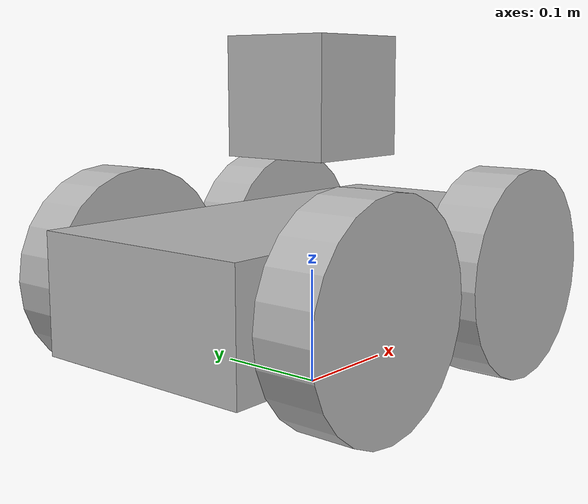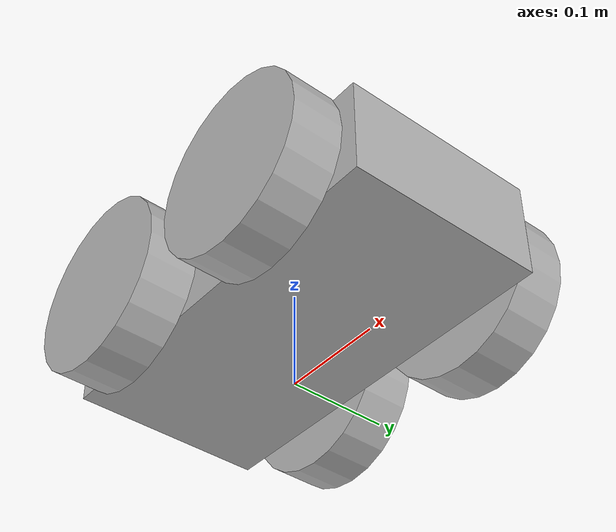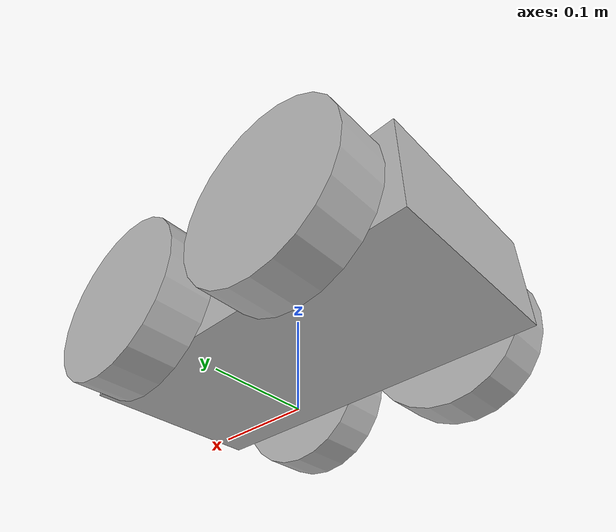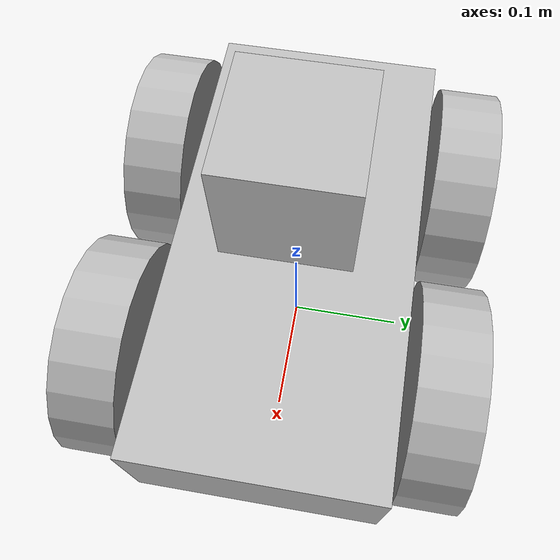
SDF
<?xml version="1.0" ?>
<sdf version="1.4">
	<model name="my_robot">
	<static>false</static>

	<link name="camera">
		<pose>.0 .0 .25 .0 .0 .0</pose>
		<inertial>
        		<mass>0.1</mass>
      		</inertial>
		<collision name="camera_collision">
		        <geometry>
			        <box>
				        <size>0.1 0.1 0.1</size>
			          </box>
		        </geometry>
		</collision>
		<visual name="camera_visual">
		        <geometry>
			          <box>
            				<size>0.1 0.1 0.1</size>
			          </box>
		        </geometry>
		</visual>
		<sensor name="camera" type="camera">
			<always_on>true</always_on>
		        <update_rate>1</update_rate>
		        <visualize>true</visualize>
			<camera>
	                    <horizontal_fov>1.047</horizontal_fov>
			       <image>
			            <width>640</width>
			            <height>480</height>
			       </image>
		              <clip>
			            <near>0.1</near>
		        	    <far>100</far>
			      </clip>
		        </camera>
	      </sensor>

	</link>
	<link name="chassis">
		<pose>0 0 .1 0 0 0</pose>
		<collision name="collision">
			<geometry>
				<box>
					<size>.4 .2 .1</size>
				</box>
			</geometry>
		</collision>

		<visual name ="visual">
			<geometry>
				<box>
					<size>.4 .2 .1</size>
				</box>
			</geometry>
		</visual>

	</link>

	<link name="left_wheel">
		<pose>0.1 0.13 0.1 0 1.5707 1.5707</pose>
		<collision name="collision">
			<geometry>
				<cylinder>
					<radius>.09</radius>
					<length>.05</length>
				</cylinder>
			</geometry>
		</collision>

		<visual name="visual">
			<geometry>
				<cylinder>
					<radius>.09</radius>
					<length>.05</length>
				</cylinder>
			</geometry>
		</visual>
	</link>

	<link name="right_wheel">
		<pose>0.1 -0.13 0.1 0 1.5707 1.5707</pose>
		<collision name="collision">
			<geometry>
				<cylinder>
					<radius>.09</radius>
					<length>.05</length>
				</cylinder>
			</geometry>
		</collision>

		<visual name="visual">
			<geometry>
				<cylinder>
					<radius>.09</radius>
					<length>.05</length>
				</cylinder>
			</geometry>
		</visual>
	</link>

	<link name="left_wheelA">
		<pose>-0.1 0.13 0.1 0 1.5707 1.5707</pose>
		<collision name="collision">
			<geometry>
				<cylinder>
					<radius>.09</radius>
					<length>.05</length>
				</cylinder>
			</geometry>
		</collision>

		<visual name="visual">
			<geometry>
				<cylinder>
					<radius>.09</radius>
					<length>.05</length>
				</cylinder>
			</geometry>
		</visual>
	</link>

	<link name="right_wheelA">
		<pose>-0.1 -0.13 0.1 0 1.5707 1.5707</pose>
		<collision name="collision">
			<geometry>
				<cylinder>
					<radius>.09</radius>
					<length>.05</length>
				</cylinder>
			</geometry>
		</collision>

		<visual name="visual">
			<geometry>
				<cylinder>
					<radius>.09</radius>
					<length>.05</length>
				</cylinder>
			</geometry>
		</visual>
	</link>

	<joint type="revolute" name="camera">
		<pose>0 0 0.3 0 0 0</pose>
		<child>camera</child>
		<parent>chassis</parent>
		<axis>
			<xyz>0 1 0</xyz>
		</axis>
	</joint>

	<joint type="revolute" name="left_wheel_hinger">
		<pose>0 0 0.03 0 0 0</pose>
		<child>left_wheel</child>
		<parent>chassis</parent>
		<axis>
			<xyz>0 1 0</xyz>
		</axis>
	</joint>

	<joint type="revolute" name="right_wheel_hinger">
		<pose>0 0 0.03 0 0 0</pose>
		<child>right_wheel</child>
		<parent>chassis</parent>
		<axis>
			<xyz>0 1 0</xyz>
		</axis>
	</joint>

	<joint type="revolute" name="left_wheel_hingerA">
		<pose>0 0 0.03 0 0 0</pose>
		<child>left_wheelA</child>
		<parent>chassis</parent>
		<axis>
			<xyz>0 1 0</xyz>
		</axis>
	</joint>

	<joint type="revolute" name="right_wheel_hingerA">
		<pose>0 0 0.03 0 0 0</pose>
		<child>right_wheelA</child>
		<parent>chassis</parent>
		<axis>
			<xyz>0 1 0</xyz>
		</axis>
	</joint>

	</model>
</sdf>
